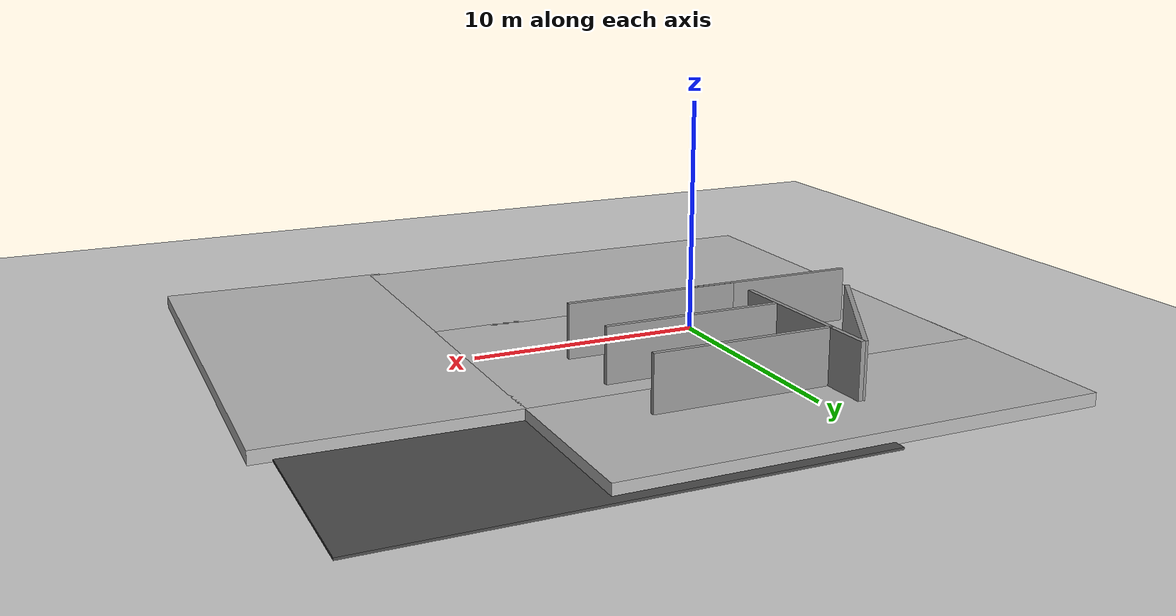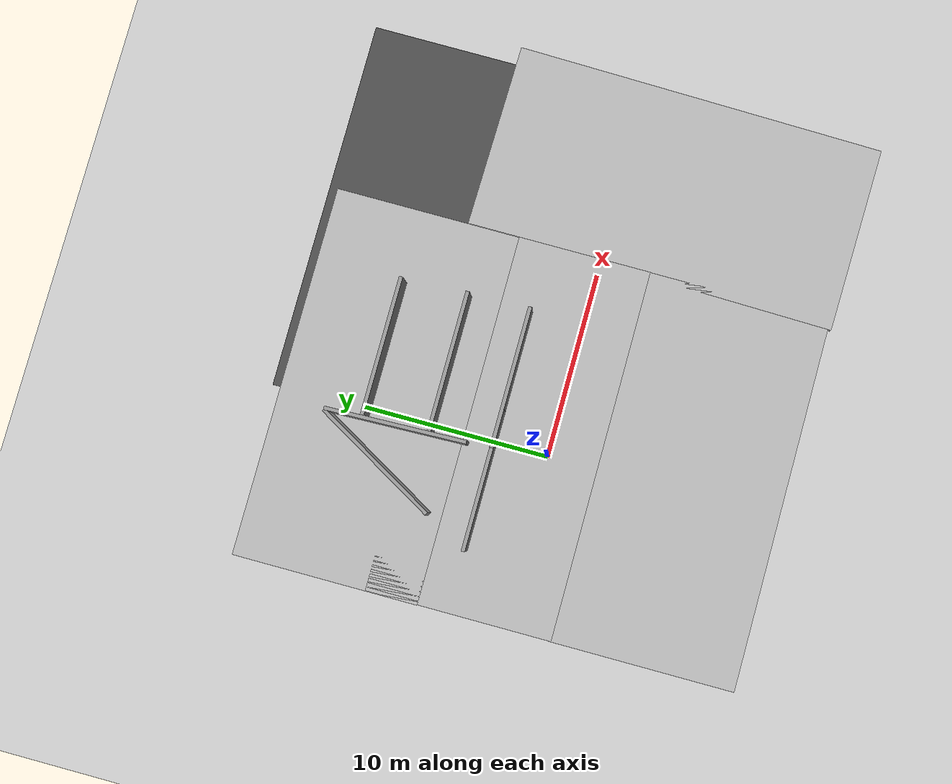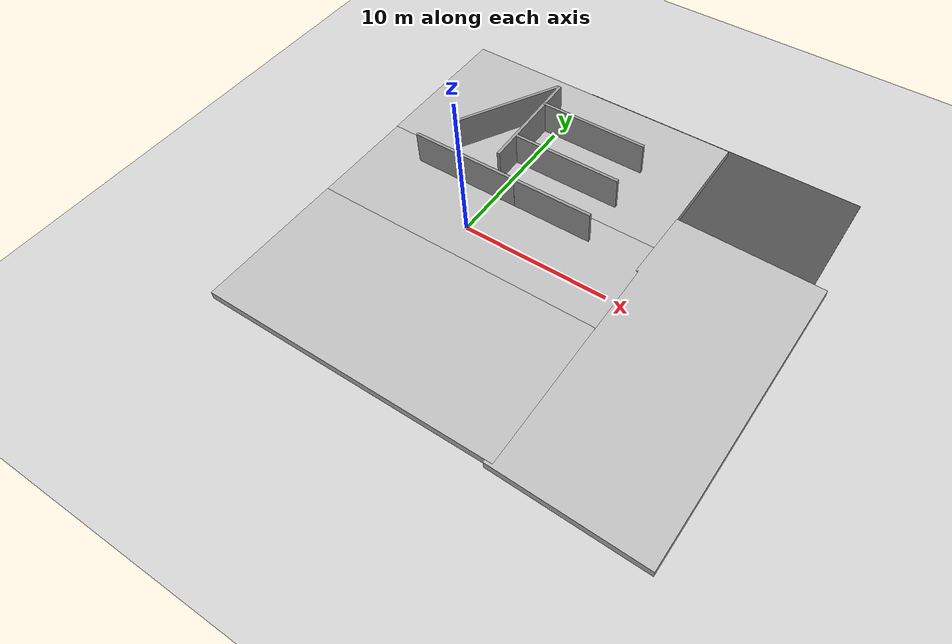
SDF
<sdf version="1.6">
 <world name="default">
  <light name="sun" type="directional">
   <pose>0 0 10 0 -0 0</pose>
   <diffuse>0.8 0.8 0.8 1</diffuse>
   <specular>0.1 0.1 0.1 1</specular>
   <attenuation>
    <range>1000</range>
    <constant>0.9</constant>
    <linear>0.01</linear>
    <quadratic>0.001</quadratic>
   </attenuation>
   <direction>-0.5 0.5 -1</direction>
  </light>
  <model name="ground_plane">
   <static>1</static>
   <link name="link">
    <collision name="collision">
     <geometry><plane><normal>0 0 1</normal><size>100 100</size></plane></geometry>
     <surface><friction><ode><mu>100</mu><mu2>50</mu2></ode></friction></surface>
    </collision>
    <visual name="visual">
     <cast_shadows>0</cast_shadows>
     <geometry><plane><normal>0 0 1</normal><size>100 100</size></plane></geometry>
     <material>
      <script><uri>file://media/materials/scripts/gazebo.material</uri><name>Gazebo/Grey</name></script>
     </material>
    </visual>
   </link>
  </model>
  <gravity>0 0 -9.8</gravity>
  <magnetic_field>6e-06 2.3e-05 -4.2e-05</magnetic_field>
  <atmosphere type="adiabatic"/>
  <physics name="default_physics" default="0" type="ode">
   <max_step_size>0.001</max_step_size>
   <real_time_factor>1</real_time_factor>
   <real_time_update_rate>1000</real_time_update_rate>
  </physics>
  <scene><ambient>0.4 0.4 0.4 1</ambient><background>0.7 0.7 0.7 1</background><shadows>1</shadows></scene>
  <spherical_coordinates>
   <surface_model>EARTH_WGS84</surface_model>
   <latitude_deg>0</latitude_deg>
   <longitude_deg>0</longitude_deg>
   <elevation>0</elevation>
   <heading_deg>0</heading_deg>
  </spherical_coordinates>
  <model name="asphalt_plane">
   <static>1</static>
   <link name="link">
    <collision name="collision"><geometry><box><size>20 20 0.1</size></box></geometry></collision>
    <visual name="visual">
     <cast_shadows>0</cast_shadows>
     <geometry><box><size>20 20 0.1</size></box></geometry>
     <material>
      <script>
       <uri>model://asphalt_plane/materials/scripts</uri>
       <uri>model://asphalt_plane/materials/textures</uri>
       <name>vrc/asphalt</name>
      </script>
     </material>
    </visual>
   </link>
   <pose>9.69834 -1.50235 0 0 -0 0</pose>
  </model>
  <model name="asphalt_plane_clone">
   <static>1</static>
   <link name="link">
    <collision name="collision"><geometry><box><size>20 20 0.1</size></box></geometry></collision>
    <visual name="visual">
     <cast_shadows>0</cast_shadows>
     <geometry><box><size>20 20 0.1</size></box></geometry>
     <material>
      <script>
       <uri>model://asphalt_plane/materials/scripts</uri>
       <uri>model://asphalt_plane/materials/textures</uri>
       <name>vrc/asphalt</name>
      </script>
     </material>
    </visual>
   </link>
   <pose>9.88173 5.04343 0 0 -0 0</pose>
  </model>
  <model name="aaa_bigbo_0">
   <link name="link">
    <inertial>
     <mass>1</mass>
     <inertia><ixx>1</ixx><ixy>0</ixy><ixz>0</ixz><iyy>1</iyy><iyz>0</iyz><izz>1</izz></inertia>
    </inertial>
    <visual name="visual">
     <geometry><box><size>20 10 1</size></box></geometry>
     <material><shader type="vertex"><normal_map>__default__</normal_map></shader></material>
    </visual>
    <collision name="collision">
     <geometry><box><size>20 10 2</size></box></geometry>
     <surface>
      <friction>
       <ode><mu>1</mu><mu2>1</mu2><fdir1>0 0 0</fdir1><slip1>0</slip1><slip2>0</slip2></ode>
       <torsional>
        <coefficient>1</coefficient>
        <patch_radius>0</patch_radius>
        <surface_radius>0</surface_radius>
        <use_patch_radius>1</use_patch_radius>
        <ode><slip>0</slip></ode>
       </torsional>
      </friction>
      <bounce><restitution_coefficient>0</restitution_coefficient><threshold>1e+06</threshold></bounce>
      <contact>
       <collide_without_contact>0</collide_without_contact>
       <collide_without_contact_bitmask>1</collide_without_contact_bitmask>
       <collide_bitmask>1</collide_bitmask>
       <ode>
        <soft_cfm>0</soft_cfm>
        <soft_erp>0.2</soft_erp>
        <kp>1e+13</kp>
        <kd>1</kd>
        <max_vel>0.01</max_vel>
        <min_depth>0</min_depth>
       </ode>
       <bullet>
        <split_impulse>1</split_impulse>
        <split_impulse_penetration_threshold>-0.01</split_impulse_penetration_threshold>
        <soft_cfm>0</soft_cfm>
        <soft_erp>0.2</soft_erp>
        <kp>1e+13</kp>
        <kd>1</kd>
       </bullet>
      </contact>
     </surface>
    </collision>
   </link>
   <static>1</static>
   <pose>0.813337 -7.46525 0 0 -0 0</pose>
  </model>
  <model name="aaa_bigbo_0_clone">
   <link name="link">
    <inertial>
     <mass>1</mass>
     <inertia><ixx>1</ixx><ixy>0</ixy><ixz>0</ixz><iyy>1</iyy><iyz>0</iyz><izz>1</izz></inertia>
    </inertial>
    <visual name="visual">
     <geometry><box><size>20 10 1</size></box></geometry>
     <material><shader type="vertex"><normal_map>__default__</normal_map></shader></material>
    </visual>
    <collision name="collision">
     <geometry><box><size>20 10 2</size></box></geometry>
     <surface>
      <friction>
       <ode><mu>1</mu><mu2>1</mu2><fdir1>0 0 0</fdir1><slip1>0</slip1><slip2>0</slip2></ode>
       <torsional>
        <coefficient>1</coefficient>
        <patch_radius>0</patch_radius>
        <surface_radius>0</surface_radius>
        <use_patch_radius>1</use_patch_radius>
        <ode><slip>0</slip></ode>
       </torsional>
      </friction>
      <bounce><restitution_coefficient>0</restitution_coefficient><threshold>1e+06</threshold></bounce>
      <contact>
       <collide_without_contact>0</collide_without_contact>
       <collide_without_contact_bitmask>1</collide_without_contact_bitmask>
       <collide_bitmask>1</collide_bitmask>
       <ode>
        <soft_cfm>0</soft_cfm>
        <soft_erp>0.2</soft_erp>
        <kp>1e+13</kp>
        <kd>1</kd>
        <max_vel>0.01</max_vel>
        <min_depth>0</min_depth>
       </ode>
       <bullet>
        <split_impulse>1</split_impulse>
        <split_impulse_penetration_threshold>-0.01</split_impulse_penetration_threshold>
        <soft_cfm>0</soft_cfm>
        <soft_erp>0.2</soft_erp>
        <kp>1e+13</kp>
        <kd>1</kd>
       </bullet>
      </contact>
     </surface>
    </collision>
   </link>
   <static>1</static>
   <pose>0.828979 2.34525 0 0 -0 0</pose>
  </model>
  <model name="aaa_bigbo_0_clone_0">
   <link name="link">
    <inertial>
     <mass>1</mass>
     <inertia><ixx>1</ixx><ixy>0</ixy><ixz>0</ixz><iyy>1</iyy><iyz>0</iyz><izz>1</izz></inertia>
    </inertial>
    <visual name="visual">
     <geometry><box><size>20 10 1</size></box></geometry>
     <material><shader type="vertex"><normal_map>__default__</normal_map></shader></material>
    </visual>
    <collision name="collision">
     <geometry><box><size>20 10 2</size></box></geometry>
     <surface>
      <friction>
       <ode><mu>1</mu><mu2>1</mu2><fdir1>0 0 0</fdir1><slip1>0</slip1><slip2>0</slip2></ode>
       <torsional>
        <coefficient>1</coefficient>
        <patch_radius>0</patch_radius>
        <surface_radius>0</surface_radius>
        <use_patch_radius>1</use_patch_radius>
        <ode><slip>0</slip></ode>
       </torsional>
      </friction>
      <bounce><restitution_coefficient>0</restitution_coefficient><threshold>1e+06</threshold></bounce>
      <contact>
       <collide_without_contact>0</collide_without_contact>
       <collide_without_contact_bitmask>1</collide_without_contact_bitmask>
       <collide_bitmask>1</collide_bitmask>
       <ode>
        <soft_cfm>0</soft_cfm>
        <soft_erp>0.2</soft_erp>
        <kp>1e+13</kp>
        <kd>1</kd>
        <max_vel>0.01</max_vel>
        <min_depth>0</min_depth>
       </ode>
       <bullet>
        <split_impulse>1</split_impulse>
        <split_impulse_penetration_threshold>-0.01</split_impulse_penetration_threshold>
        <soft_cfm>0</soft_cfm>
        <soft_erp>0.2</soft_erp>
        <kp>1e+13</kp>
        <kd>1</kd>
       </bullet>
      </contact>
     </surface>
    </collision>
   </link>
   <static>1</static>
   <pose>0.802279 9.53831 0 0 -0 0</pose>
  </model>
  <model name="aaa_bigbo_0_clone_1">
   <link name="link">
    <inertial>
     <mass>1</mass>
     <inertia><ixx>1</ixx><ixy>0</ixy><ixz>0</ixz><iyy>1</iyy><iyz>0</iyz><izz>1</izz></inertia>
    </inertial>
    <visual name="visual">
     <geometry><box><size>20 10 1</size></box></geometry>
     <material><shader type="vertex"><normal_map>__default__</normal_map></shader></material>
    </visual>
    <collision name="collision">
     <geometry><box><size>20 10 2</size></box></geometry>
     <surface>
      <friction>
       <ode><mu>1</mu><mu2>1</mu2><fdir1>0 0 0</fdir1><slip1>0</slip1><slip2>0</slip2></ode>
       <torsional>
        <coefficient>1</coefficient>
        <patch_radius>0</patch_radius>
        <surface_radius>0</surface_radius>
        <use_patch_radius>1</use_patch_radius>
        <ode><slip>0</slip></ode>
       </torsional>
      </friction>
      <bounce><restitution_coefficient>0</restitution_coefficient><threshold>1e+06</threshold></bounce>
      <contact>
       <collide_without_contact>0</collide_without_contact>
       <collide_without_contact_bitmask>1</collide_without_contact_bitmask>
       <collide_bitmask>1</collide_bitmask>
       <ode>
        <soft_cfm>0</soft_cfm>
        <soft_erp>0.2</soft_erp>
        <kp>1e+13</kp>
        <kd>1</kd>
        <max_vel>0.01</max_vel>
        <min_depth>0</min_depth>
       </ode>
       <bullet>
        <split_impulse>1</split_impulse>
        <split_impulse_penetration_threshold>-0.01</split_impulse_penetration_threshold>
        <soft_cfm>0</soft_cfm>
        <soft_erp>0.2</soft_erp>
        <kp>1e+13</kp>
        <kd>1</kd>
       </bullet>
      </contact>
     </surface>
    </collision>
   </link>
   <static>1</static>
   <pose>15.5502 -2.74808 0 0 -0 1.55</pose>
  </model>
  <model name="grey_wall">
   <static>1</static>
   <link name="link">
    <pose>0 0 1.4 0 -0 0</pose>
    <collision name="collision"><geometry><box><size>7.5 0.2 2.8</size></box></geometry></collision>
    <visual name="visual">
     <cast_shadows>0</cast_shadows>
     <geometry><box><size>7.5 0.2 2.8</size></box></geometry>
     <material>
      <script>
       <uri>model://grey_wall/materials/scripts</uri>
       <uri>model://grey_wall/materials/textures</uri>
       <name>vrc/grey_wall</name>
      </script>
     </material>
    </visual>
   </link>
   <pose>3.13368 9.71004 0 0 -0 0</pose>
  </model>
  <model name="grey_wall_clone">
   <static>1</static>
   <link name="link">
    <pose>0 0 1.4 0 -0 0</pose>
    <collision name="collision"><geometry><box><size>7.5 0.2 2.8</size></box></geometry></collision>
    <visual name="visual">
     <cast_shadows>0</cast_shadows>
     <geometry><box><size>7.5 0.2 2.8</size></box></geometry>
     <material>
      <script>
       <uri>model://grey_wall/materials/scripts</uri>
       <uri>model://grey_wall/materials/textures</uri>
       <name>vrc/grey_wall</name>
      </script>
     </material>
    </visual>
   </link>
   <pose>3.3085 6.19301 0 0 -0 0</pose>
  </model>
  <model name="grey_wall_clone_0">
   <static>1</static>
   <link name="link">
    <pose>0 0 1.4 0 -0 0</pose>
    <collision name="collision"><geometry><box><size>7.5 0.2 2.8</size></box></geometry></collision>
    <visual name="visual">
     <cast_shadows>0</cast_shadows>
     <geometry><box><size>7.5 0.2 2.8</size></box></geometry>
     <material>
      <script>
       <uri>model://grey_wall/materials/scripts</uri>
       <uri>model://grey_wall/materials/textures</uri>
       <name>vrc/grey_wall</name>
      </script>
     </material>
    </visual>
   </link>
   <pose>3.37644 2.87828 0 0 -0 0</pose>
  </model>
  <model name="grey_wall_clone_1">
   <static>1</static>
   <link name="link">
    <pose>0 0 1.4 0 -0 0</pose>
    <collision name="collision"><geometry><box><size>7.5 0.2 2.8</size></box></geometry></collision>
    <visual name="visual">
     <cast_shadows>0</cast_shadows>
     <geometry><box><size>7.5 0.2 2.8</size></box></geometry>
     <material>
      <script>
       <uri>model://grey_wall/materials/scripts</uri>
       <uri>model://grey_wall/materials/textures</uri>
       <name>vrc/grey_wall</name>
      </script>
     </material>
    </visual>
   </link>
   <pose>-2.06534 2.87407 0 0 -0 0</pose>
  </model>
  <model name="grey_wall_clone_2">
   <static>1</static>
   <link name="link">
    <pose>0 0 1.4 0 -0 0</pose>
    <collision name="collision"><geometry><box><size>7.5 0.2 2.8</size></box></geometry></collision>
    <visual name="visual">
     <cast_shadows>0</cast_shadows>
     <geometry><box><size>7.5 0.2 2.8</size></box></geometry>
     <material>
      <script>
       <uri>model://grey_wall/materials/scripts</uri>
       <uri>model://grey_wall/materials/textures</uri>
       <name>vrc/grey_wall</name>
      </script>
     </material>
    </visual>
   </link>
   <pose>-0.544001 7.93478 0 0 -0 1.6</pose>
  </model>
  <model name="grey_wall_clone_2_clone">
   <static>1</static>
   <link name="link">
    <pose>0 0 1.4 0 -0 0</pose>
    <collision name="collision"><geometry><box><size>7.5 0.2 2.8</size></box></geometry></collision>
    <visual name="visual">
     <cast_shadows>0</cast_shadows>
     <geometry><box><size>7.5 0.2 2.8</size></box></geometry>
     <material>
      <script>
       <uri>model://grey_wall/materials/scripts</uri>
       <uri>model://grey_wall/materials/textures</uri>
       <name>vrc/grey_wall</name>
      </script>
     </material>
    </visual>
   </link>
   <pose>-2.60892 8.42217 0 0 -0 1.05</pose>
  </model>
 </world>
</sdf>
